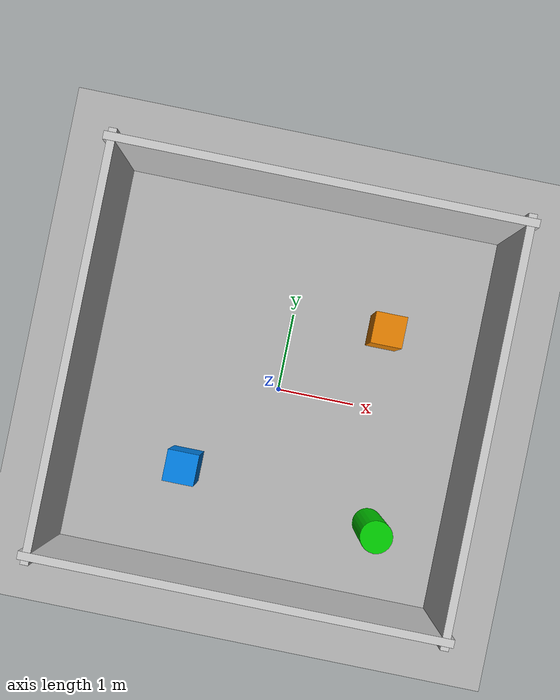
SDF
<?xml version="1.0" ?>
<sdf version="1.6">
  <world name="simple_aed">

    <light name="sun" type="directional">
      <cast_shadows>true</cast_shadows>
      <pose>0 0 10 0 0 0</pose>
      <diffuse>0.8 0.8 0.8 1</diffuse>
      <specular>0.2 0.2 0.2 1</specular>
      <attenuation>
        <range>1000</range>
        <constant>0.9</constant>
        <linear>0.01</linear>
        <quadratic>0.001</quadratic>
      </attenuation>
      <direction>-0.5 0.1 -0.9</direction>
    </light>

    <model name="ground_plane">
      <static>true</static>
      <link name="link">
        <collision name="collision">
          <geometry>
            <plane>
              <normal>0 0 1</normal>
              <size>100 100</size>
            </plane>
          </geometry>
          <surface>
            <friction>
              <ode>
                <mu>100</mu>
                <mu2>50</mu2>
              </ode>
            </friction>
          </surface>
        </collision>
        <visual name="visual">
          <cast_shadows>false</cast_shadows>
          <geometry>
            <plane>
              <normal>0 0 1</normal>
              <size>100 100</size>
            </plane>
          </geometry>
          <material>
            <ambient>0.5 0.5 0.5 1</ambient>
            <diffuse>0.7 0.7 0.7 1</diffuse>
          </material>
        </visual>
      </link>
    </model>

    <model name="wall_north">
      <static>true</static>
      <pose>0 2.5 0.5 0 0 0</pose>
      <link name="link">
        <collision name="collision">
          <geometry>
            <box><size>5.2 0.1 1</size></box>
          </geometry>
        </collision>
        <visual name="visual">
          <geometry>
            <box><size>5.2 0.1 1</size></box>
          </geometry>
          <material>
            <ambient>0.6 0.6 0.6 1</ambient>
            <diffuse>0.8 0.8 0.8 1</diffuse>
          </material>
        </visual>
      </link>
    </model>

    <model name="wall_south">
      <static>true</static>
      <pose>0 -2.5 0.5 0 0 0</pose>
      <link name="link">
        <collision name="collision">
          <geometry>
            <box><size>5.2 0.1 1</size></box>
          </geometry>
        </collision>
        <visual name="visual">
          <geometry>
            <box><size>5.2 0.1 1</size></box>
          </geometry>
          <material>
            <ambient>0.6 0.6 0.6 1</ambient>
            <diffuse>0.8 0.8 0.8 1</diffuse>
          </material>
        </visual>
      </link>
    </model>

    <model name="wall_east">
      <static>true</static>
      <pose>2.5 0 0.5 0 0 0</pose>
      <link name="link">
        <collision name="collision">
          <geometry>
            <box><size>0.1 5.2 1</size></box>
          </geometry>
        </collision>
        <visual name="visual">
          <geometry>
            <box><size>0.1 5.2 1</size></box>
          </geometry>
          <material>
            <ambient>0.6 0.6 0.6 1</ambient>
            <diffuse>0.8 0.8 0.8 1</diffuse>
          </material>
        </visual>
      </link>
    </model>

    <model name="wall_west">
      <static>true</static>
      <pose>-2.5 0 0.5 0 0 0</pose>
      <link name="link">
        <collision name="collision">
          <geometry>
            <box><size>0.1 5.2 1</size></box>
          </geometry>
        </collision>
        <visual name="visual">
          <geometry>
            <box><size>0.1 5.2 1</size></box>
          </geometry>
          <material>
            <ambient>0.6 0.6 0.6 1</ambient>
            <diffuse>0.8 0.8 0.8 1</diffuse>
          </material>
        </visual>
      </link>
    </model>

    <model name="obstacle_box1">
      <static>true</static>
      <pose>1.2 1.0 0.25 0 0 0</pose>
      <link name="link">
        <collision name="collision">
          <geometry>
            <box><size>0.4 0.4 0.5</size></box>
          </geometry>
        </collision>
        <visual name="visual">
          <geometry>
            <box><size>0.4 0.4 0.5</size></box>
          </geometry>
          <material>
            <ambient>0.8 0.4 0.0 1</ambient>
            <diffuse>0.9 0.5 0.0 1</diffuse>
          </material>
        </visual>
      </link>
    </model>

    <model name="obstacle_box2">
      <static>true</static>
      <pose>-1.0 -1.2 0.25 0 0 0</pose>
      <link name="link">
        <collision name="collision">
          <geometry>
            <box><size>0.4 0.4 0.5</size></box>
          </geometry>
        </collision>
        <visual name="visual">
          <geometry>
            <box><size>0.4 0.4 0.5</size></box>
          </geometry>
          <material>
            <ambient>0.0 0.4 0.8 1</ambient>
            <diffuse>0.0 0.5 0.9 1</diffuse>
          </material>
        </visual>
      </link>
    </model>

    <model name="obstacle_cylinder">
      <static>true</static>
      <pose>1.5 -1.5 0.4 0 0 0</pose>
      <link name="link">
        <collision name="collision">
          <geometry>
            <cylinder>
              <radius>0.2</radius>
              <length>0.8</length>
            </cylinder>
          </geometry>
        </collision>
        <visual name="visual">
          <geometry>
            <cylinder>
              <radius>0.2</radius>
              <length>0.8</length>
            </cylinder>
          </geometry>
          <material>
            <ambient>0.0 0.6 0.0 1</ambient>
            <diffuse>0.0 0.8 0.0 1</diffuse>
          </material>
        </visual>
      </link>
    </model>

    <physics type="ode">
      <real_time_update_rate>1000</real_time_update_rate>
      <max_step_size>0.001</max_step_size>
      <real_time_factor>1.0</real_time_factor>
    </physics>

    <gravity>0 0 -9.81</gravity>

    <gui>
      <camera name="user_camera">
        <pose>0 -6 5 0 0.5 1.5708</pose>
      </camera>
    </gui>

  </world>
</sdf>
